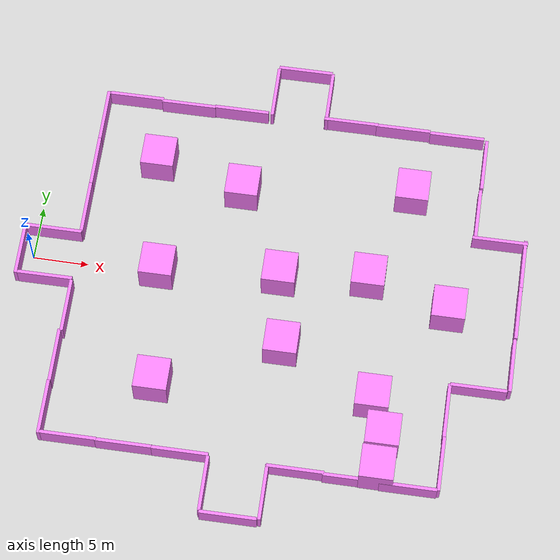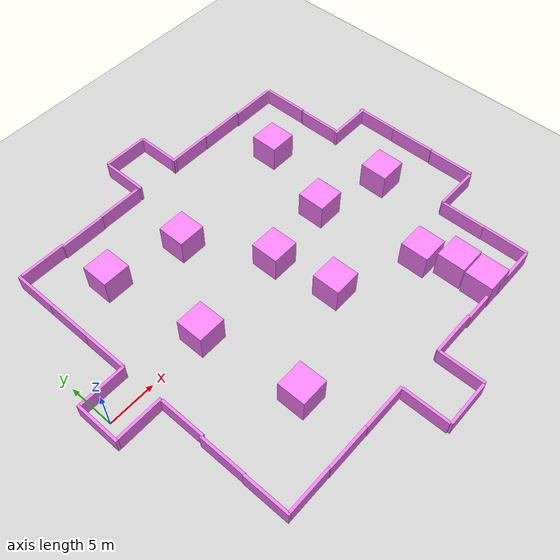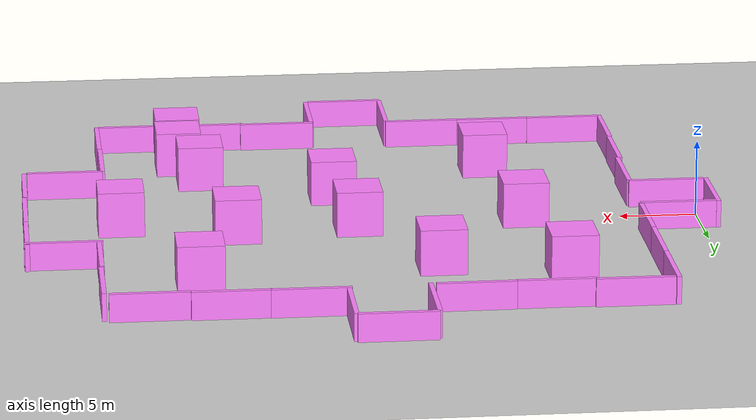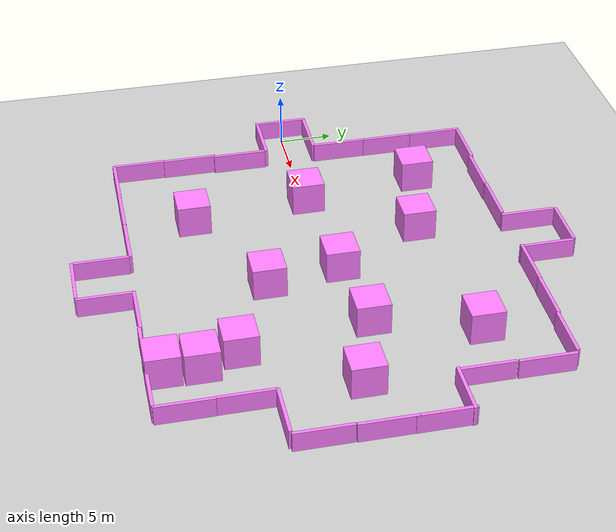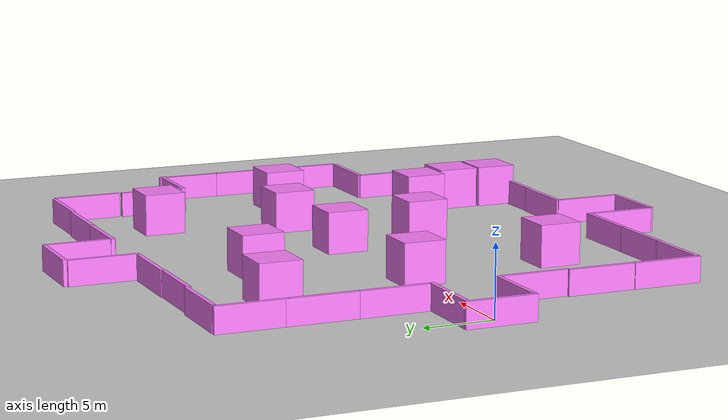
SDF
<sdf version="1.8">
 <world name="robots">
  <physics type="ode">
   <max_step_size>0.004</max_step_size>
   <real_time_factor>1.0</real_time_factor>
   <real_time_update_rate>250</real_time_update_rate>
  </physics>
  <plugin filename="gz-sim-physics-system" name="gz::sim::systems::Physics"/>
  <plugin filename="gz-sim-user-commands-system" name="gz::sim::systems::UserCommands"/>
  <plugin filename="gz-sim-scene-broadcaster-system" name="gz::sim::systems::SceneBroadcaster"/>
  <plugin name="gz::sim::systems::Physics" filename="gz-sim-physics-system"/>
  <plugin name="gz::sim::systems::UserCommands" filename="gz-sim-user-commands-system"/>
  <plugin name="gz::sim::systems::SceneBroadcaster" filename="gz-sim-scene-broadcaster-system"/>
  <plugin name="gz::sim::systems::Contact" filename="gz-sim-contact-system"/>
  <plugin name="gz::sim::systems::Imu" filename="gz-sim-imu-system"/>
  <plugin name="gz::sim::systems::AirPressure" filename="gz-sim-air-pressure-system"/>
  <plugin name="gz::sim::systems::ApplyLinkWrench" filename="gz-sim-apply-link-wrench-system"/>
  <plugin name="gz::sim::systems::NavSat" filename="gz-sim-navsat-system"/>
  <plugin name="gz::sim::systems::Sensors" filename="gz-sim-sensors-system">
   <render_engine>ogre2</render_engine>
  </plugin>
  <light type="directional" name="sun">
   <pose>0 0 10 0 0 0</pose>
   <diffuse>0.8 0.8 0.8 1</diffuse>
   <specular>0.2 0.2 0.2 1</specular>
   <attenuation>
    <range>1000</range>
    <constant>0.9</constant>
    <linear>0.01</linear>
    <quadratic>0.001</quadratic>
   </attenuation>
   <direction>-0.5 0.1 -0.9</direction>
  </light>
  <model name="ground_plane">
   <static>true</static>
   <link name="link">
    <collision name="collision"><geometry><plane><normal>0 0 1</normal></plane></geometry></collision>
    <visual name="visual">
     <geometry><plane><normal>0 0 1</normal><size>1000 1000</size></plane></geometry>
     <material>
      <ambient>0.8 0.8 0.8 1</ambient>
      <diffuse>0.8 0.8 0.8 1</diffuse>
      <specular>0.8 0.8 0.8 1</specular>
     </material>
    </visual>
   </link>
  </model>
  <include>
   <uri>models://labirint</uri>
   <pose relative_to="world">0 0 0 0 0 0</pose>
   <name>labirint</name>
  </include>
 </world>
</sdf>

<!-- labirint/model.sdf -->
<sdf version="1.5">
    <model name="labirint">
          <include>
            <uri>file:///home/dworf/sim/src/quest/models/bobox</uri>
            <name>bobox_1</name>
            <pose>11.448804230838588 0.12261259071546526 1.4999995687240288 -2.250425703030636e-18 5.0072417029042205e-19 -1.9440603116503542e-18</pose>
          </include>
          <include>
            <uri>file:///home/dworf/sim/src/quest/models/bobox</uri>
            <name>bobox_2</name>
            <pose>17.861867318793621 9.0883207157754136 1.4999998293465087 1.3487332118635481e-18 -5.3031071485459108e-18 -1.7782649091740884e-18</pose>
          </include>
          <include>
            <uri>file:///home/dworf/sim/src/quest/models/bobox</uri>
            <name>bobox_3</name>
            <pose>23.477925292079611 -5.7633424600789294 1.4999998442985718 2.6226569375650102e-18 -5.9152336708628799e-18 -1.7928865927276069e-18</pose>
          </include>
          <include>
            <uri>file:///home/dworf/sim/src/quest/models/bobox</uri>
            <name>bobox_4</name>
            <pose>33.239681245431989 10.784051663994722 1.4999990946720274 2.4655589120309556e-18 -6.1364969846514242e-18 -1.6872774890198303e-18</pose>
          </include>
          <include>
            <uri>file:///home/dworf/sim/src/quest/models/bobox</uri>
            <name>bobox_5</name>
            <pose>33.235238854806504 -16.191033624364266 1.4999994661830707 2.3671804906183138e-07 -7.9375833739895851e-08 -8.3305144213970872e-09</pose>
          </include>
          <include>
            <uri>file:///home/dworf/sim/src/quest/models/bobox</uri>
            <name>bobox_6</name>
            <pose>33.324781761936741 -13.032038434205312 1.4999999994062578 2.0883361209224278e-18 -6.4904364014821425e-18 -1.6709832940680271e-18</pose>
          </include>
          <include>
            <uri>file:///home/dworf/sim/src/quest/models/bobox</uri>
            <name>bobox_7</name>
            <pose>32.044832564617792 -9.6772462715664957 1.4999999994062578 2.0883361209224278e-18 -6.4904364014821425e-18 -1.6709832940680271e-18</pose>
          </include>
          <include>
            <uri>file:///home/dworf/sim/src/quest/models/bobox</uri>
            <name>bobox_8</name>
            <pose>12.781093434109904 -10.759397828514224 1.4999999994062578 2.0883361209224278e-18 -6.4904364014821425e-18 -1.6709832940680271e-18</pose>
          </include>
          <include>
            <uri>file:///home/dworf/sim/src/quest/models/bobox</uri>
            <name>bobox_9</name>
            <pose>9.825999424539976 11.015897756907075 1.4999999994062578 2.0883361209224278e-18 -6.4904364014821425e-18 -1.6709832940680271e-18</pose>
          </include>
          <include>
            <uri>file:///home/dworf/sim/src/quest/models/bobox</uri>
            <name>bobox_10</name>
            <pose>30.308195630271442 1.7818762594431021 1.4999999994062578 2.0883361209224278e-18 -6.4904364014821425e-18 -1.6709832940680271e-18</pose>
          </include>
          <include>
            <uri>file:///home/dworf/sim/src/quest/models/bobox</uri>
            <name>bobox_11</name>
            <pose>37.731043941467583 -0.42748401721300433 1.4999999994062578 2.0883361209224278e-18 -6.4904364014821425e-18 -1.6709832940680271e-18</pose>
          </include>
          <include>
            <uri>file:///home/dworf/sim/src/quest/models/bobox</uri>
            <name>bobox_12</name>
            <pose>22.388556239795189 0.94761585661733494 1.4999999994062578 2.0726047283433454e-18 -6.5009391601678831e-18 -1.6739454798412435e-18</pose>
          </include>
        <include>
            <uri>models://wall</uri>
            <name>wall_1</name>
            <pose>-1.0587603274683035 0.095477882804221495 0.59426167216621917 -2.0282004403076578e-07 -2.6050549175268198e-05 0.00031319030727578362</pose>
       </include>
       <include>
            <uri>models://wall</uri>
            <name>wall1_1</name>
            <pose>1.591237135616526 2.4327772384709054 0.6156985050480932 1.2308195205600196e-10 -1.791108025568075e-06 1.5686356306283329</pose>
       </include>
        <include>
            <uri>models://wall</uri>
            <name>wall1_1_1</name>
            <pose>1.5921823217658542 -2.2701044885574428 0.61188246183829009 -1.6821430609315448e-07 4.2777652774001164e-06 1.5722698374415245</pose>
         </include>
        <include>
            <uri>models://wall</uri>
            <name>wall_1_1</name>
            <pose>4.0415575163148914 -4.9101350635088812 0.59312025935520796 -1.3210504012894065e-06 -2.6035105491778596e-05 0.00033651172263449164</pose>
        </include>
        <include>
            <uri>models://wall</uri>
            <name>wall_1_2</name>
            <pose>3.8686209925842432 -9.7937640699968345 0.59139413991260115 1.2080342290475776e-07 -2.6117496528863026e-05 0.00033644800392229856</pose>
         </include>
        <include>
            <uri>models://wall</uri>
            <name>wall_1_3</name>
            <pose>4.0390234320961245 4.9679810222662546 0.59401190267783099 3.4275447306794495e-07 -2.5724615793523852e-05 0.00033649102650935836</pose>
         </include>
        <include>
            <uri>models://wall</uri>
            <name>wall_1_4</name>
            <pose>4.0436769704713154 9.960322906599016 0.59389148324230945 -3.3440579442553419e-07 -2.5740628307998543e-05 0.00033651204131387953</pose>
         </include>
        <include>
            <uri>models://wall</uri>
            <name>wall_1_5</name>
            <pose>3.8130654986394381 -14.708742882089204 0.5940291459658007 6.3724846744139084e-07 -2.793619070459642e-05 -0.00054823923668121375</pose>
         </include>
        <include>
            <uri>models://wall</uri>
            <name>wall_1_6</name>
            <pose>4.0429695918312705 14.686109974553606 0.59403193342009675 -4.8559550373677885e-07 -2.5752139822562925e-05 0.00033651364885193202</pose>
         </include>
        <include>
            <uri>models://wall</uri>
            <name>wall1_1_1_1</name>
            <pose>6.3920198310363761 -17.055684577218866 0.6118075565188491 -8.3892656603375526e-07 1.8501066893700275e-06 1.5713401126294682</pose>
         </include>
        <include>
            <uri>models://wall</uri>
            <name>wall1_1_1_2</name>
            <pose>11.270358415872675 -17.086727394928598 0.61180878651303849 1.0295079265565436e-07 2.1095398558541956e-06 1.5713800917909124</pose>
         </include>
        <include>
            <uri>models://wall</uri>
            <name>wall1_1_1_3</name>
            <pose>16.214842643315219 -17.102915513758177 0.61183236106715067 6.9084267218833091e-07 2.9974006017200443e-06 1.5717484252336704</pose>
         </include>
        <include>
            <uri>models://wall</uri>
            <name>wall1_1_1_3_1</name>
            <pose>6.7292863543375292 17.073636699583108 0.61179269899283439 5.0694847137029648e-08 2.2199359570961171e-06 1.571410094868114</pose>
         </include>
        <include>
            <uri>models://wall</uri>
            <name>wall1_1_1_1_1</name>
            <pose>11.620115889482996 16.909082052970593 0.6117687870968288 -2.3294548641176068e-07 2.0174834966015078e-06 1.5713400944681506</pose>
         </include>
        <include>
            <uri>models://wall</uri>
            <name>wall1_1_1_1_2</name>
            <pose>16.600629983141285 16.977885074271686 0.61177688078370129 -3.7392474293921942e-08 2.0214111495991118e-06 1.5713401043357251</pose>
         </include>
        <include>
            <uri>models://wall</uri>
            <name>wall_1_7</name>
            <pose>18.673902666331237 -19.724980574603428 0.59423847694131482 -1.9474501793744924e-07 -2.5897688548582204e-05 0.00033649916643173274</pose>
         </include>
        <include>
            <uri>models://wall</uri>
            <name>wall1_1_1_4</name>
            <pose>21.173797315525661 -22.289608295529433 0.6118617976824664 -3.7388902957243666e-08 2.3755982614264067e-06 1.5719761350967008</pose>
         </include>
        <include>
            <uri>models://wall</uri>
            <name>wall_1_7_1</name>
            <pose>23.852443524394943 -19.831399788398723 0.59421576533147891 -2.2004183121772384e-07 -2.6171627116869912e-05 0.00033650783520403147</pose>
         </include>
        <include>
            <uri>models://wall</uri>
            <name>wall1_1_1_3_2</name>
            <pose>26.267294126220243 -17.369774413495875 0.6118160786047151 -3.6130357346604423e-07 2.9355382615837686e-06 1.5712332406730793</pose>
         </include>
        <include>
            <uri>models://wall</uri>
            <name>wall1_1_1_3_3</name>
            <pose>31.150457629989365 -17.481318341138017 0.61181716464187619 3.4015947993916299e-07 2.5745599185717383e-06 1.5714999141990094</pose>
         </include>
        <include>
            <uri>models://wall</uri>
            <name>wall1_1_1_3_4</name>
            <pose>36.049233586943579 -17.560224167101818 0.61181408858292374 6.3807408987721475e-07 2.4254297905978451e-06 1.5714999422104694</pose>
         </include>
        <include>
            <uri>models://wall</uri>
            <name>wall_1_7_2</name>
            <pose>19.435494247171377 19.334688286672392 0.59420910277592531 -2.1239892318758959e-07 -2.5971737310993014e-05 0.00033649097106225421</pose>
         </include>
        <include>
            <uri>models://wall</uri>
            <name>wall1_1_1_4_1</name>
            <pose>21.936068436548339 21.977823705579851 0.61184408403825064 -2.3572834413021804e-07 3.3083107723988126e-06 1.5715495225252825</pose>
         </include>
        <include>
            <uri>models://wall</uri>
            <name>wall_1_7_1_1</name>
            <pose>24.488532587836328 19.443435854807799 0.59419927367364256 -3.4286345896342818e-07 -2.5108672866519949e-05 0.00014885468620932498</pose>
         </include>
        <include>
            <uri>models://wall</uri>
            <name>wall1_1_1_3_3_1</name>
            <pose>26.795253365920857 17.127170110705265 0.61180241653677192 -1.8564384878835623e-08 1.9833393728967934e-06 1.5716952863180129</pose>
         </include>
        <include>
            <uri>models://wall</uri>
            <name>wall1_1_1_3_3_2</name>
            <pose>31.661595767723416 17.093459433099344 0.61179253975016878 5.8052845770710881e-07 2.2769170571961416e-06 1.5714999429180456</pose>
         </include>
        <include>
            <uri>models://wall</uri>
            <name>wall1_1_1_3_3_3</name>
            <pose>36.678930507904781 16.977793084503805 0.6118048930134512 3.7298787988479779e-07 2.3563397523641094e-06 1.5714999367889211</pose>
         </include>
        <include>
            <uri>models://wall</uri>
            <name>wall_1_8</name>
            <pose>38.654355703655746 -15.102667401489349 0.59424553033628646 -1.21376852074569e-07 -2.538244447442336e-05 0.00062795598702305631</pose>
         </include>
        <include>
            <uri>models://wall</uri>
            <name>wall_1_9</name>
            <pose>38.614819887260374 -10.159689116085543 0.5942426443476978 -6.4572317624115485e-07 -2.6468511406339539e-05 0.0004436825355355465</pose>
         </include>
        <include>
            <uri>models://wall</uri>
            <name>wall_1_10</name>
            <pose>39.448356673926575 14.353865878715506 0.59424313016060615 -2.0282142162407098e-07 -2.5942083024522597e-05 0.00031320670577168633</pose>
         </include>
        <include>
            <uri>models://wall</uri>
            <name>wall_1_11</name>
            <pose>39.385302758787738 9.1945421421918905 0.59424809205063889 -6.7127010899921049e-07 -2.5922533270101722e-05 0.00031319906343142277</pose>
         </include>
        <include>
            <uri>models://wall</uri>
            <name>wall1_1_1_4_2</name>
            <pose>41.133109300827542 -7.6867247642816929 0.61185052415082664 -4.939000620343356e-08 2.9216158983767839e-06 1.5718399363934623</pose>
        </include>
        <include>
            <uri>models://wall</uri>
            <name>wall1_1_1_4_3</name>
            <pose>41.627391640646479 6.8202281792270805 0.61185036805975879 -2.7930216501396528e-07 1.9319492027364355e-06 1.5719844839222306</pose>
        </include>
        <include>
            <uri>models://wall</uri>
            <name>wall_1_8_1</name>
            <pose>43.845401010205428 -5.1493589856916815 0.59422827018889546 -1.9246973010070727e-07 -2.5701719417244544e-05 0.00037507622946744419</pose>
        </include>
        <include>
            <uri>models://wall</uri>
            <name>wall_1_8_2</name>
            <pose>43.900965010967155 -0.052753665704136192 0.59423391246708901 -3.5016861821896329e-07 -2.5630719493639174e-05 0.00038845599697518709</pose>
         </include>
         <include>
            <uri>models://wall</uri>
            <name>wall_1_8_3</name>
            <pose>43.918429856455234 4.6059747903752655 0.59423086568118233 -2.6440205719260434e-07 -2.4783542129803299e-05 0.00039385960319656695</pose>
         </include>
    </model>
</sdf>

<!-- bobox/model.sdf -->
<sdf version="1.5">
    <model name="wall">
        <link name="wall">
            <inertial>
                <inertia>
                    <ixx>0.126164</ixx>
                    <ixy>0</ixy>
                    <ixz>0</ixz>
                    <iyy>0.416519</iyy>
                    <iyz>0</iyz>
                    <izz>0.481014</izz>
                </inertia>
            </inertial>

            <visual name="visual">
                <geometry>
                    <box>
                        <size>3 3 3</size>
                    </box>
                </geometry>
                <material>
                    <ambient>1.0 0.5 1.0 1</ambient>
                    <diffuse>1.0 0.5 1.0 1</diffuse>
                    <specular>1.0 0.5 1.0 1</specular>
                </material>
            </visual>
            <collision name="collision">
                <geometry>
                    <box>
                        <size>3 3 3</size>
                    </box>
                </geometry>
            </collision>
        </link>
    </model>
</sdf>

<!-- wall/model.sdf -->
<sdf version="1.5">
    <model name="wall">
        <link name="wall">
            <inertial>
                <inertia>
                    <ixx>0.126164</ixx>
                    <ixy>0</ixy>
                    <ixz>0</ixz>
                    <iyy>0.416519</iyy>
                    <iyz>0</iyz>
                    <izz>0.481014</izz>
                </inertia>
            </inertial>

            <visual name="visual">
                <geometry>
                    <box>
                        <size>0.3 5 2.3</size>
                    </box>
                </geometry>
                <material>
                    <ambient>1.0 0.5 1.0 1</ambient>
                    <diffuse>1.0 0.5 1.0 1</diffuse>
                    <specular>1.0 0.5 1.0 1</specular>
                </material>
            </visual>
            <collision name="collision">
                <geometry>
                    <box>
                        <size>0.3 5 2.3</size>
                    </box>
                </geometry>
            </collision>
        </link>
    </model>
</sdf>
